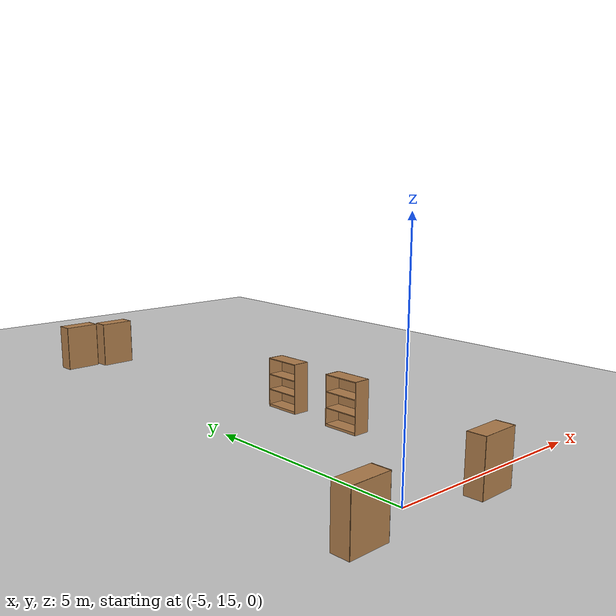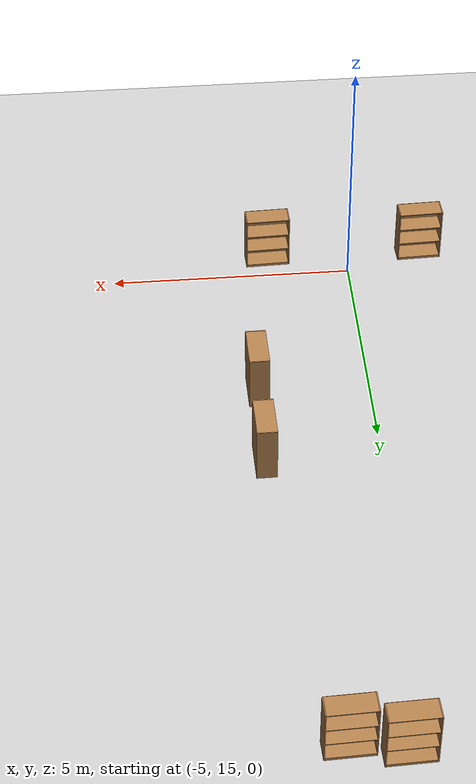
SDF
<sdf version="1.6">
 <world name="default">
  <model name="ground_plane">
   <static>1</static>
   <link name="link">
    <collision name="collision">
     <geometry><plane><normal>0 0 1</normal><size>100 100</size></plane></geometry>
     <surface>
      <contact><collide_bitmask>65535</collide_bitmask></contact>
      <friction><ode><mu>100</mu><mu2>50</mu2></ode></friction>
     </surface>
    </collision>
    <visual name="visual">
     <cast_shadows>0</cast_shadows>
     <geometry><plane><normal>0 0 1</normal><size>100 100</size></plane></geometry>
     <material>
      <script><uri>file://media/materials/scripts/gazebo.material</uri><name>Gazebo/Grey</name></script>
     </material>
    </visual>
   </link>
  </model>
  <model name="bookshelf_clone_2_clone_clone_0_clone_clone_10">
   <static>1</static>
   <link name="link">
    <inertial><mass>1</mass></inertial>
    <collision name="back">
     <pose>0 0.005 0.6 0 -0 0</pose>
     <geometry><box><size>0.9 0.01 1.2</size></box></geometry>
    </collision>
    <visual name="visual1">
     <pose>0 0.005 0.6 0 -0 0</pose>
     <geometry><box><size>0.9 0.01 1.2</size></box></geometry>
     <material>
      <script><uri>file://media/materials/scripts/gazebo.material</uri><name>Gazebo/Wood</name></script>
     </material>
    </visual>
    <collision name="left_side">
     <pose>0.45 -0.195 0.6 0 -0 0</pose>
     <geometry><box><size>0.02 0.4 1.2</size></box></geometry>
    </collision>
    <visual name="visual2">
     <pose>0.45 -0.195 0.6 0 -0 0</pose>
     <geometry><box><size>0.02 0.4 1.2</size></box></geometry>
     <material>
      <script><uri>file://media/materials/scripts/gazebo.material</uri><name>Gazebo/Wood</name></script>
     </material>
    </visual>
    <collision name="right_side">
     <pose>-0.45 -0.195 0.6 0 -0 0</pose>
     <geometry><box><size>0.02 0.4 1.2</size></box></geometry>
    </collision>
    <visual name="visual3">
     <pose>-0.45 -0.195 0.6 0 -0 0</pose>
     <geometry><box><size>0.02 0.4 1.2</size></box></geometry>
     <material>
      <script><uri>file://media/materials/scripts/gazebo.material</uri><name>Gazebo/Wood</name></script>
     </material>
    </visual>
    <collision name="bottom">
     <pose>0 -0.195 0.03 0 -0 0</pose>
     <geometry><box><size>0.88 0.4 0.06</size></box></geometry>
    </collision>
    <visual name="visual4">
     <pose>0 -0.195 0.03 0 -0 0</pose>
     <geometry><box><size>0.88 0.4 0.06</size></box></geometry>
     <material>
      <script><uri>file://media/materials/scripts/gazebo.material</uri><name>Gazebo/Wood</name></script>
     </material>
    </visual>
    <collision name="top">
     <pose>0 -0.195 1.19 0 -0 0</pose>
     <geometry><box><size>0.88 0.4 0.02</size></box></geometry>
    </collision>
    <visual name="visual5">
     <pose>0 -0.195 1.19 0 -0 0</pose>
     <geometry><box><size>0.88 0.4 0.02</size></box></geometry>
     <material>
      <script><uri>file://media/materials/scripts/gazebo.material</uri><name>Gazebo/Wood</name></script>
     </material>
    </visual>
    <collision name="low_shelf">
     <pose>0 -0.195 0.43 0 -0 0</pose>
     <geometry><box><size>0.88 0.4 0.02</size></box></geometry>
    </collision>
    <visual name="visual6">
     <pose>0 -0.195 0.43 0 -0 0</pose>
     <geometry><box><size>0.88 0.4 0.02</size></box></geometry>
     <material>
      <script><uri>file://media/materials/scripts/gazebo.material</uri><name>Gazebo/Wood</name></script>
     </material>
    </visual>
    <collision name="high_shelf">
     <pose>0 -0.195 0.8 0 -0 0</pose>
     <geometry><box><size>0.88 0.4 0.02</size></box></geometry>
    </collision>
    <visual name="visual7">
     <pose>0 -0.195 0.8 0 -0 0</pose>
     <geometry><box><size>0.88 0.4 0.02</size></box></geometry>
     <material>
      <script><uri>file://media/materials/scripts/gazebo.material</uri><name>Gazebo/Wood</name></script>
     </material>
    </visual>
   </link>
   <pose>-6.56853 14.292 0 0 0 -3.10717</pose>
  </model>
  <model name="bookshelf_clone_2_clone_clone_0_clone_3_clone_clone_clone">
   <static>1</static>
   <link name="link">
    <inertial><mass>1</mass></inertial>
    <collision name="back">
     <pose>0 0.005 0.6 0 -0 0</pose>
     <geometry><box><size>0.9 0.01 1.2</size></box></geometry>
    </collision>
    <visual name="visual1">
     <pose>0 0.005 0.6 0 -0 0</pose>
     <geometry><box><size>0.9 0.01 1.2</size></box></geometry>
     <material>
      <script><uri>file://media/materials/scripts/gazebo.material</uri><name>Gazebo/Wood</name></script>
     </material>
    </visual>
    <collision name="left_side">
     <pose>0.45 -0.195 0.6 0 -0 0</pose>
     <geometry><box><size>0.02 0.4 1.2</size></box></geometry>
    </collision>
    <visual name="visual2">
     <pose>0.45 -0.195 0.6 0 -0 0</pose>
     <geometry><box><size>0.02 0.4 1.2</size></box></geometry>
     <material>
      <script><uri>file://media/materials/scripts/gazebo.material</uri><name>Gazebo/Wood</name></script>
     </material>
    </visual>
    <collision name="right_side">
     <pose>-0.45 -0.195 0.6 0 -0 0</pose>
     <geometry><box><size>0.02 0.4 1.2</size></box></geometry>
    </collision>
    <visual name="visual3">
     <pose>-0.45 -0.195 0.6 0 -0 0</pose>
     <geometry><box><size>0.02 0.4 1.2</size></box></geometry>
     <material>
      <script><uri>file://media/materials/scripts/gazebo.material</uri><name>Gazebo/Wood</name></script>
     </material>
    </visual>
    <collision name="bottom">
     <pose>0 -0.195 0.03 0 -0 0</pose>
     <geometry><box><size>0.88 0.4 0.06</size></box></geometry>
    </collision>
    <visual name="visual4">
     <pose>0 -0.195 0.03 0 -0 0</pose>
     <geometry><box><size>0.88 0.4 0.06</size></box></geometry>
     <material>
      <script><uri>file://media/materials/scripts/gazebo.material</uri><name>Gazebo/Wood</name></script>
     </material>
    </visual>
    <collision name="top">
     <pose>0 -0.195 1.19 0 -0 0</pose>
     <geometry><box><size>0.88 0.4 0.02</size></box></geometry>
    </collision>
    <visual name="visual5">
     <pose>0 -0.195 1.19 0 -0 0</pose>
     <geometry><box><size>0.88 0.4 0.02</size></box></geometry>
     <material>
      <script><uri>file://media/materials/scripts/gazebo.material</uri><name>Gazebo/Wood</name></script>
     </material>
    </visual>
    <collision name="low_shelf">
     <pose>0 -0.195 0.43 0 -0 0</pose>
     <geometry><box><size>0.88 0.4 0.02</size></box></geometry>
    </collision>
    <visual name="visual6">
     <pose>0 -0.195 0.43 0 -0 0</pose>
     <geometry><box><size>0.88 0.4 0.02</size></box></geometry>
     <material>
      <script><uri>file://media/materials/scripts/gazebo.material</uri><name>Gazebo/Wood</name></script>
     </material>
    </visual>
    <collision name="high_shelf">
     <pose>0 -0.195 0.8 0 -0 0</pose>
     <geometry><box><size>0.88 0.4 0.02</size></box></geometry>
    </collision>
    <visual name="visual7">
     <pose>0 -0.195 0.8 0 -0 0</pose>
     <geometry><box><size>0.88 0.4 0.02</size></box></geometry>
     <material>
      <script><uri>file://media/materials/scripts/gazebo.material</uri><name>Gazebo/Wood</name></script>
     </material>
    </visual>
   </link>
   <pose>-4.53568 27.4165 0 0 0 -3.10717</pose>
  </model>
  <model name="bookshelf_clone_2_clone_clone_0_clone_3_clone_clone_clone_0">
   <static>1</static>
   <link name="link">
    <inertial><mass>1</mass></inertial>
    <collision name="back">
     <pose>0 0.005 0.6 0 -0 0</pose>
     <geometry><box><size>0.9 0.01 1.2</size></box></geometry>
    </collision>
    <visual name="visual1">
     <pose>0 0.005 0.6 0 -0 0</pose>
     <geometry><box><size>0.9 0.01 1.2</size></box></geometry>
     <material>
      <script><uri>file://media/materials/scripts/gazebo.material</uri><name>Gazebo/Wood</name></script>
     </material>
    </visual>
    <collision name="left_side">
     <pose>0.45 -0.195 0.6 0 -0 0</pose>
     <geometry><box><size>0.02 0.4 1.2</size></box></geometry>
    </collision>
    <visual name="visual2">
     <pose>0.45 -0.195 0.6 0 -0 0</pose>
     <geometry><box><size>0.02 0.4 1.2</size></box></geometry>
     <material>
      <script><uri>file://media/materials/scripts/gazebo.material</uri><name>Gazebo/Wood</name></script>
     </material>
    </visual>
    <collision name="right_side">
     <pose>-0.45 -0.195 0.6 0 -0 0</pose>
     <geometry><box><size>0.02 0.4 1.2</size></box></geometry>
    </collision>
    <visual name="visual3">
     <pose>-0.45 -0.195 0.6 0 -0 0</pose>
     <geometry><box><size>0.02 0.4 1.2</size></box></geometry>
     <material>
      <script><uri>file://media/materials/scripts/gazebo.material</uri><name>Gazebo/Wood</name></script>
     </material>
    </visual>
    <collision name="bottom">
     <pose>0 -0.195 0.03 0 -0 0</pose>
     <geometry><box><size>0.88 0.4 0.06</size></box></geometry>
    </collision>
    <visual name="visual4">
     <pose>0 -0.195 0.03 0 -0 0</pose>
     <geometry><box><size>0.88 0.4 0.06</size></box></geometry>
     <material>
      <script><uri>file://media/materials/scripts/gazebo.material</uri><name>Gazebo/Wood</name></script>
     </material>
    </visual>
    <collision name="top">
     <pose>0 -0.195 1.19 0 -0 0</pose>
     <geometry><box><size>0.88 0.4 0.02</size></box></geometry>
    </collision>
    <visual name="visual5">
     <pose>0 -0.195 1.19 0 -0 0</pose>
     <geometry><box><size>0.88 0.4 0.02</size></box></geometry>
     <material>
      <script><uri>file://media/materials/scripts/gazebo.material</uri><name>Gazebo/Wood</name></script>
     </material>
    </visual>
    <collision name="low_shelf">
     <pose>0 -0.195 0.43 0 -0 0</pose>
     <geometry><box><size>0.88 0.4 0.02</size></box></geometry>
    </collision>
    <visual name="visual6">
     <pose>0 -0.195 0.43 0 -0 0</pose>
     <geometry><box><size>0.88 0.4 0.02</size></box></geometry>
     <material>
      <script><uri>file://media/materials/scripts/gazebo.material</uri><name>Gazebo/Wood</name></script>
     </material>
    </visual>
    <collision name="high_shelf">
     <pose>0 -0.195 0.8 0 -0 0</pose>
     <geometry><box><size>0.88 0.4 0.02</size></box></geometry>
    </collision>
    <visual name="visual7">
     <pose>0 -0.195 0.8 0 -0 0</pose>
     <geometry><box><size>0.88 0.4 0.02</size></box></geometry>
     <material>
      <script><uri>file://media/materials/scripts/gazebo.material</uri><name>Gazebo/Wood</name></script>
     </material>
    </visual>
   </link>
   <pose>-3.53331 27.2017 0 0 0 -3.10717</pose>
  </model>
  <model name="bookshelf_clone_2_clone_clone_0_clone_3_clone_0_clone_1_clone_clone_0_clone_1_clone">
   <static>1</static>
   <link name="link">
    <inertial><mass>1</mass></inertial>
    <collision name="back">
     <pose>0 0.005 0.6 0 -0 0</pose>
     <geometry><box><size>0.9 0.01 1.2</size></box></geometry>
    </collision>
    <visual name="visual1">
     <pose>0 0.005 0.6 0 -0 0</pose>
     <geometry><box><size>0.9 0.01 1.2</size></box></geometry>
     <material>
      <script><uri>file://media/materials/scripts/gazebo.material</uri><name>Gazebo/Wood</name></script>
     </material>
    </visual>
    <collision name="left_side">
     <pose>0.45 -0.195 0.6 0 -0 0</pose>
     <geometry><box><size>0.02 0.4 1.2</size></box></geometry>
    </collision>
    <visual name="visual2">
     <pose>0.45 -0.195 0.6 0 -0 0</pose>
     <geometry><box><size>0.02 0.4 1.2</size></box></geometry>
     <material>
      <script><uri>file://media/materials/scripts/gazebo.material</uri><name>Gazebo/Wood</name></script>
     </material>
    </visual>
    <collision name="right_side">
     <pose>-0.45 -0.195 0.6 0 -0 0</pose>
     <geometry><box><size>0.02 0.4 1.2</size></box></geometry>
    </collision>
    <visual name="visual3">
     <pose>-0.45 -0.195 0.6 0 -0 0</pose>
     <geometry><box><size>0.02 0.4 1.2</size></box></geometry>
     <material>
      <script><uri>file://media/materials/scripts/gazebo.material</uri><name>Gazebo/Wood</name></script>
     </material>
    </visual>
    <collision name="bottom">
     <pose>0 -0.195 0.03 0 -0 0</pose>
     <geometry><box><size>0.88 0.4 0.06</size></box></geometry>
    </collision>
    <visual name="visual4">
     <pose>0 -0.195 0.03 0 -0 0</pose>
     <geometry><box><size>0.88 0.4 0.06</size></box></geometry>
     <material>
      <script><uri>file://media/materials/scripts/gazebo.material</uri><name>Gazebo/Wood</name></script>
     </material>
    </visual>
    <collision name="top">
     <pose>0 -0.195 1.19 0 -0 0</pose>
     <geometry><box><size>0.88 0.4 0.02</size></box></geometry>
    </collision>
    <visual name="visual5">
     <pose>0 -0.195 1.19 0 -0 0</pose>
     <geometry><box><size>0.88 0.4 0.02</size></box></geometry>
     <material>
      <script><uri>file://media/materials/scripts/gazebo.material</uri><name>Gazebo/Wood</name></script>
     </material>
    </visual>
    <collision name="low_shelf">
     <pose>0 -0.195 0.43 0 -0 0</pose>
     <geometry><box><size>0.88 0.4 0.02</size></box></geometry>
    </collision>
    <visual name="visual6">
     <pose>0 -0.195 0.43 0 -0 0</pose>
     <geometry><box><size>0.88 0.4 0.02</size></box></geometry>
     <material>
      <script><uri>file://media/materials/scripts/gazebo.material</uri><name>Gazebo/Wood</name></script>
     </material>
    </visual>
    <collision name="high_shelf">
     <pose>0 -0.195 0.8 0 -0 0</pose>
     <geometry><box><size>0.88 0.4 0.02</size></box></geometry>
    </collision>
    <visual name="visual7">
     <pose>0 -0.195 0.8 0 -0 0</pose>
     <geometry><box><size>0.88 0.4 0.02</size></box></geometry>
     <material>
      <script><uri>file://media/materials/scripts/gazebo.material</uri><name>Gazebo/Wood</name></script>
     </material>
    </visual>
   </link>
   <pose>-2.53693 20.5382 0 0 0 -1.56003</pose>
  </model>
  <model name="bookshelf_clone_2_clone_clone_0_clone_3_clone_0_clone_1_clone_clone_0_clone_1_clone_1">
   <static>1</static>
   <link name="link">
    <inertial><mass>1</mass></inertial>
    <collision name="back">
     <pose>0 0.005 0.6 0 -0 0</pose>
     <geometry><box><size>0.9 0.01 1.2</size></box></geometry>
    </collision>
    <visual name="visual1">
     <pose>0 0.005 0.6 0 -0 0</pose>
     <geometry><box><size>0.9 0.01 1.2</size></box></geometry>
     <material>
      <script><uri>file://media/materials/scripts/gazebo.material</uri><name>Gazebo/Wood</name></script>
     </material>
    </visual>
    <collision name="left_side">
     <pose>0.45 -0.195 0.6 0 -0 0</pose>
     <geometry><box><size>0.02 0.4 1.2</size></box></geometry>
    </collision>
    <visual name="visual2">
     <pose>0.45 -0.195 0.6 0 -0 0</pose>
     <geometry><box><size>0.02 0.4 1.2</size></box></geometry>
     <material>
      <script><uri>file://media/materials/scripts/gazebo.material</uri><name>Gazebo/Wood</name></script>
     </material>
    </visual>
    <collision name="right_side">
     <pose>-0.45 -0.195 0.6 0 -0 0</pose>
     <geometry><box><size>0.02 0.4 1.2</size></box></geometry>
    </collision>
    <visual name="visual3">
     <pose>-0.45 -0.195 0.6 0 -0 0</pose>
     <geometry><box><size>0.02 0.4 1.2</size></box></geometry>
     <material>
      <script><uri>file://media/materials/scripts/gazebo.material</uri><name>Gazebo/Wood</name></script>
     </material>
    </visual>
    <collision name="bottom">
     <pose>0 -0.195 0.03 0 -0 0</pose>
     <geometry><box><size>0.88 0.4 0.06</size></box></geometry>
    </collision>
    <visual name="visual4">
     <pose>0 -0.195 0.03 0 -0 0</pose>
     <geometry><box><size>0.88 0.4 0.06</size></box></geometry>
     <material>
      <script><uri>file://media/materials/scripts/gazebo.material</uri><name>Gazebo/Wood</name></script>
     </material>
    </visual>
    <collision name="top">
     <pose>0 -0.195 1.19 0 -0 0</pose>
     <geometry><box><size>0.88 0.4 0.02</size></box></geometry>
    </collision>
    <visual name="visual5">
     <pose>0 -0.195 1.19 0 -0 0</pose>
     <geometry><box><size>0.88 0.4 0.02</size></box></geometry>
     <material>
      <script><uri>file://media/materials/scripts/gazebo.material</uri><name>Gazebo/Wood</name></script>
     </material>
    </visual>
    <collision name="low_shelf">
     <pose>0 -0.195 0.43 0 -0 0</pose>
     <geometry><box><size>0.88 0.4 0.02</size></box></geometry>
    </collision>
    <visual name="visual6">
     <pose>0 -0.195 0.43 0 -0 0</pose>
     <geometry><box><size>0.88 0.4 0.02</size></box></geometry>
     <material>
      <script><uri>file://media/materials/scripts/gazebo.material</uri><name>Gazebo/Wood</name></script>
     </material>
    </visual>
    <collision name="high_shelf">
     <pose>0 -0.195 0.8 0 -0 0</pose>
     <geometry><box><size>0.88 0.4 0.02</size></box></geometry>
    </collision>
    <visual name="visual7">
     <pose>0 -0.195 0.8 0 -0 0</pose>
     <geometry><box><size>0.88 0.4 0.02</size></box></geometry>
     <material>
      <script><uri>file://media/materials/scripts/gazebo.material</uri><name>Gazebo/Wood</name></script>
     </material>
    </visual>
   </link>
   <pose>-2.56405 18.5592 0 0 0 -1.56003</pose>
  </model>
  <model name="bookshelf_clone_2_clone_clone_0_clone_clone_9_clone_1">
   <static>1</static>
   <link name="link">
    <inertial><mass>1</mass></inertial>
    <collision name="back">
     <pose>0 0.005 0.6 0 -0 0</pose>
     <geometry><box><size>0.9 0.01 1.2</size></box></geometry>
    </collision>
    <visual name="visual1">
     <pose>0 0.005 0.6 0 -0 0</pose>
     <geometry><box><size>0.9 0.01 1.2</size></box></geometry>
     <material>
      <script><uri>file://media/materials/scripts/gazebo.material</uri><name>Gazebo/Wood</name></script>
     </material>
    </visual>
    <collision name="left_side">
     <pose>0.45 -0.195 0.6 0 -0 0</pose>
     <geometry><box><size>0.02 0.4 1.2</size></box></geometry>
    </collision>
    <visual name="visual2">
     <pose>0.45 -0.195 0.6 0 -0 0</pose>
     <geometry><box><size>0.02 0.4 1.2</size></box></geometry>
     <material>
      <script><uri>file://media/materials/scripts/gazebo.material</uri><name>Gazebo/Wood</name></script>
     </material>
    </visual>
    <collision name="right_side">
     <pose>-0.45 -0.195 0.6 0 -0 0</pose>
     <geometry><box><size>0.02 0.4 1.2</size></box></geometry>
    </collision>
    <visual name="visual3">
     <pose>-0.45 -0.195 0.6 0 -0 0</pose>
     <geometry><box><size>0.02 0.4 1.2</size></box></geometry>
     <material>
      <script><uri>file://media/materials/scripts/gazebo.material</uri><name>Gazebo/Wood</name></script>
     </material>
    </visual>
    <collision name="bottom">
     <pose>0 -0.195 0.03 0 -0 0</pose>
     <geometry><box><size>0.88 0.4 0.06</size></box></geometry>
    </collision>
    <visual name="visual4">
     <pose>0 -0.195 0.03 0 -0 0</pose>
     <geometry><box><size>0.88 0.4 0.06</size></box></geometry>
     <material>
      <script><uri>file://media/materials/scripts/gazebo.material</uri><name>Gazebo/Wood</name></script>
     </material>
    </visual>
    <collision name="top">
     <pose>0 -0.195 1.19 0 -0 0</pose>
     <geometry><box><size>0.88 0.4 0.02</size></box></geometry>
    </collision>
    <visual name="visual5">
     <pose>0 -0.195 1.19 0 -0 0</pose>
     <geometry><box><size>0.88 0.4 0.02</size></box></geometry>
     <material>
      <script><uri>file://media/materials/scripts/gazebo.material</uri><name>Gazebo/Wood</name></script>
     </material>
    </visual>
    <collision name="low_shelf">
     <pose>0 -0.195 0.43 0 -0 0</pose>
     <geometry><box><size>0.88 0.4 0.02</size></box></geometry>
    </collision>
    <visual name="visual6">
     <pose>0 -0.195 0.43 0 -0 0</pose>
     <geometry><box><size>0.88 0.4 0.02</size></box></geometry>
     <material>
      <script><uri>file://media/materials/scripts/gazebo.material</uri><name>Gazebo/Wood</name></script>
     </material>
    </visual>
    <collision name="high_shelf">
     <pose>0 -0.195 0.8 0 -0 0</pose>
     <geometry><box><size>0.88 0.4 0.02</size></box></geometry>
    </collision>
    <visual name="visual7">
     <pose>0 -0.195 0.8 0 -0 0</pose>
     <geometry><box><size>0.88 0.4 0.02</size></box></geometry>
     <material>
      <script><uri>file://media/materials/scripts/gazebo.material</uri><name>Gazebo/Wood</name></script>
     </material>
    </visual>
   </link>
   <pose>-3.3019 14.2671 0 0 0 -3.10717</pose>
  </model>
 </world>
</sdf>
